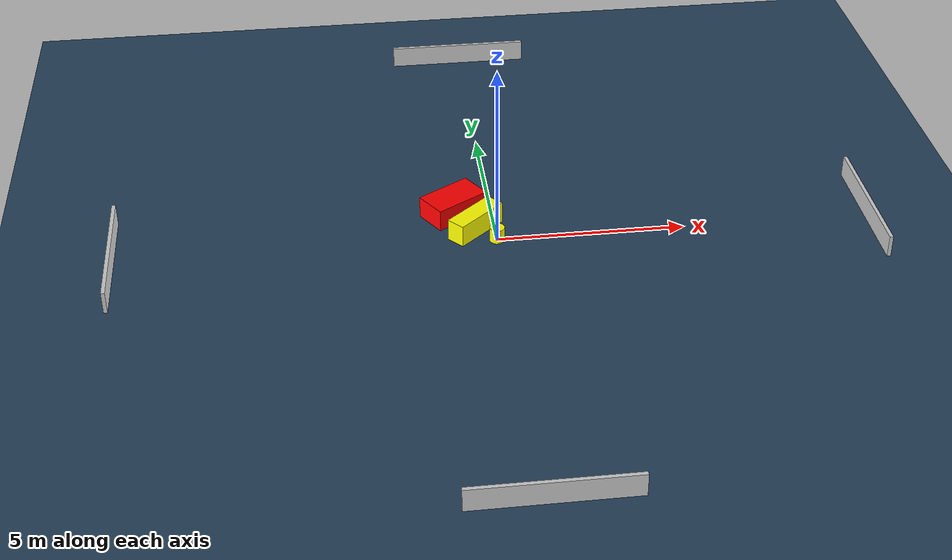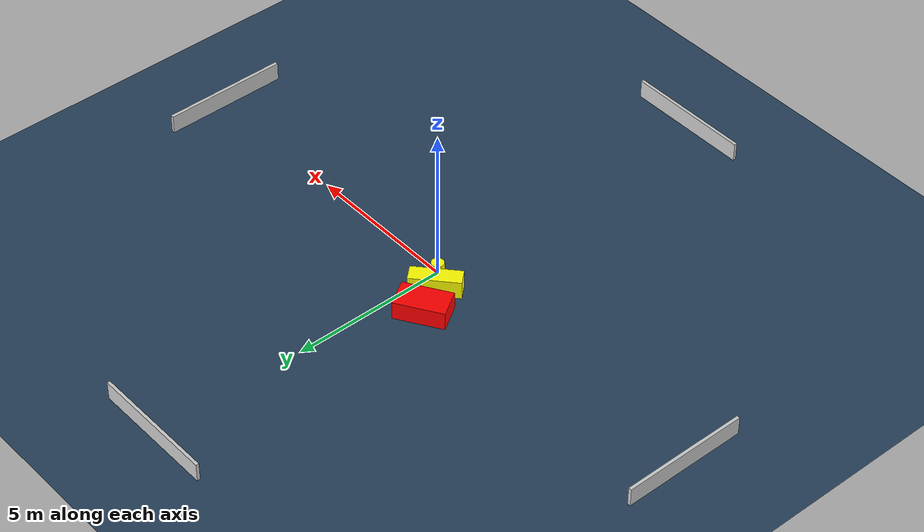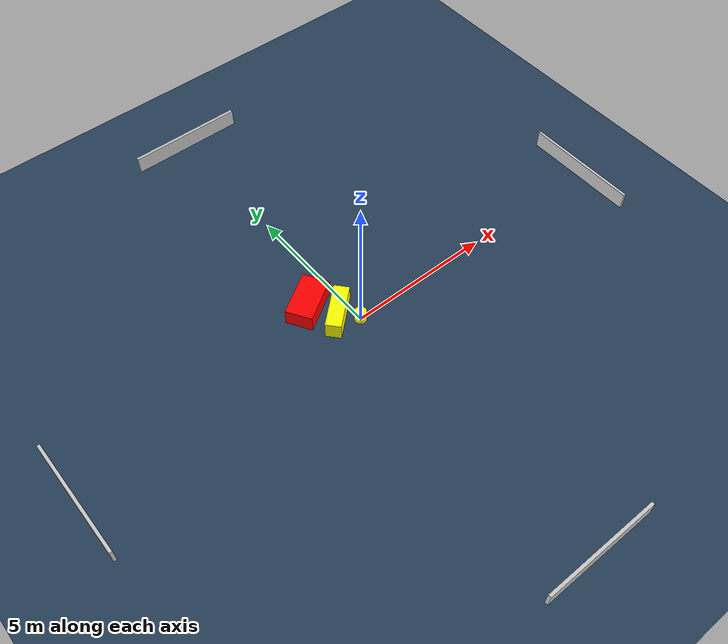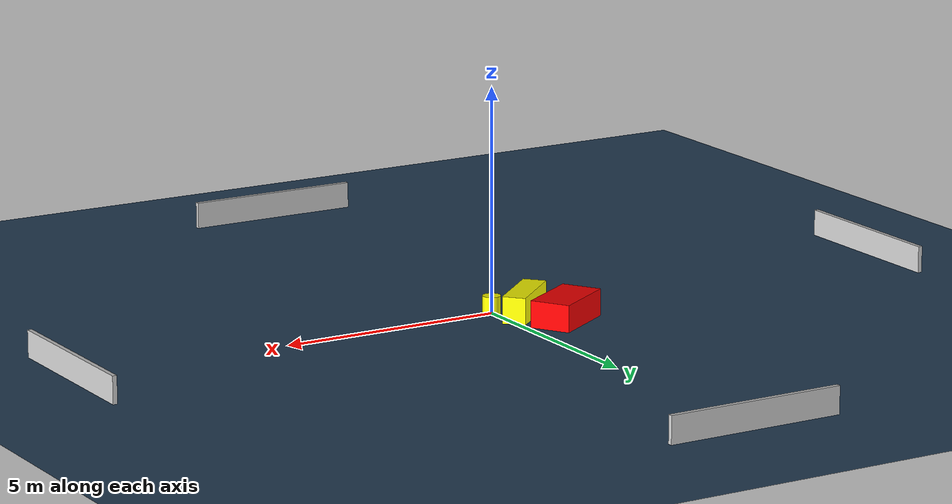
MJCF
<?xml version="1.0" ?>
<mujoco model="generated_environment">
  <option timestep="0.01" integrator="RK4" cone="elliptic"/>
  <default>
    <geom density="1"/>
  </default>
  <asset>
    <texture builtin="gradient" height="3072" name="skybox" rgb1="0.3 0.5 0.7" rgb2="0 0 0" type="skybox" width="512"/>
    <texture builtin="checker" height="300" name="groundplane" rgb1="0.2 0.3 0.4" rgb2="0.1 0.2 0.3" type="2d" width="300"/>
    <material name="groundplane" reflectance="0.2" texrepeat="5 5" texture="groundplane"/>
  </asset>
  <worldbody>
    <light dir="0 0 -1" directional="true" pos="0 0 1.5"/>
    <geom condim="3" friction="0.5 0.005 0.001" material="groundplane" name="floor" pos="0 0 0" size="0 0 0.05" type="plane"/>
    <body name="walls">
      <geom name="wall_1" condim="4" pos="-10.0 0.0 0.3" rgba="0.800000011920929 0.800000011920929 0.800000011920929 1.0" size="0.05 2.0 0.3" type="box"/>
      <geom name="wall_2" condim="4" pos="10.0 0.0 0.3" rgba="0.800000011920929 0.800000011920929 0.800000011920929 1.0" size="0.05 2.0 0.3" type="box"/>
      <geom name="wall_3" condim="4" pos="0.0 -10.0 0.3" rgba="0.800000011920929 0.800000011920929 0.800000011920929 1.0" size="2.0 0.05 0.3" type="box"/>
      <geom name="wall_4" condim="4" pos="0.0 10.0 0.3" rgba="0.800000011920929 0.800000011920929 0.800000011920929 1.0" size="2.0 0.05 0.3" type="box"/>
    </body>
    <body name="robot">
      <joint name="joint_x" type="slide" pos="0 0 0" axis="1 0 0"/>
      <joint name="joint_y" type="slide" pos="0 0 0" axis="0 1 0"/>
      <geom name="robot" type="cylinder" pos="0.0 0.0 0.2" size="0.2 0.2 0.0" mass="5.0" friction="1.0 0.005 0.0001" condim="4" rgba="1.0 1.0 0.0 1.0"/>
    </body>
    <body name="obstacle_1_movable">
      <geom name="obstacle_1_movable" condim="4" pos="-0.5125373485222444 0.5128537193009618 0.3" euler="0 0 41.68275434483596" friction="0.0 0.005 0.001" rgba="1.0 1.0 0.0 1.0" size="0.7822746576577773 0.25889470453083707 0.3" type="box" mass="0.1"/>
      <joint type="free"/>
    </body>
    <body name="obstacle_2_static">
      <geom name="obstacle_2_static" condim="4" pos="-1.0144934737496203 1.3986838497668006 0.3" euler="0 0 302.0644824687677" friction="0.0 0.005 0.001" rgba="1.0 0.0 0.0 1.0" size="0.4519990010293676 0.7800208635447587 0.3" type="box"/>
    </body>
  </worldbody>
  <actuator>
    <motor name="actuator_x" joint="joint_x" gear="1" ctrlrange="-1 1"/>
    <motor name="actuator_y" joint="joint_y" gear="1" ctrlrange="-1 1"/>
  </actuator>
</mujoco>
